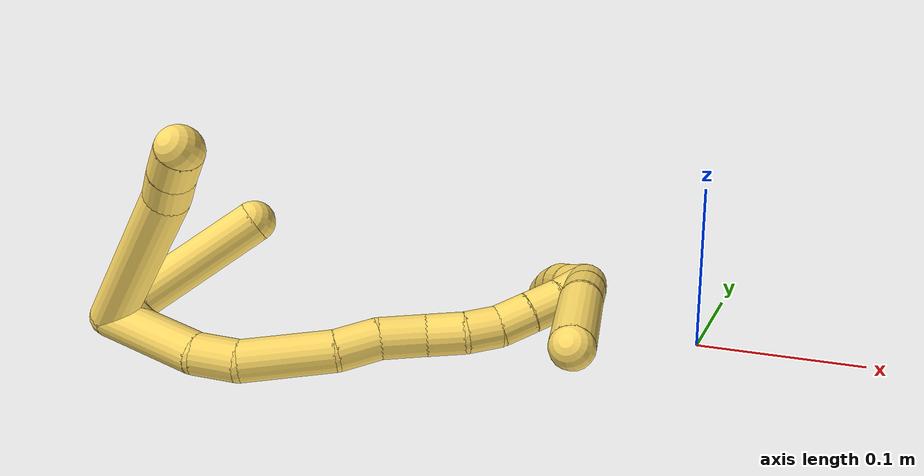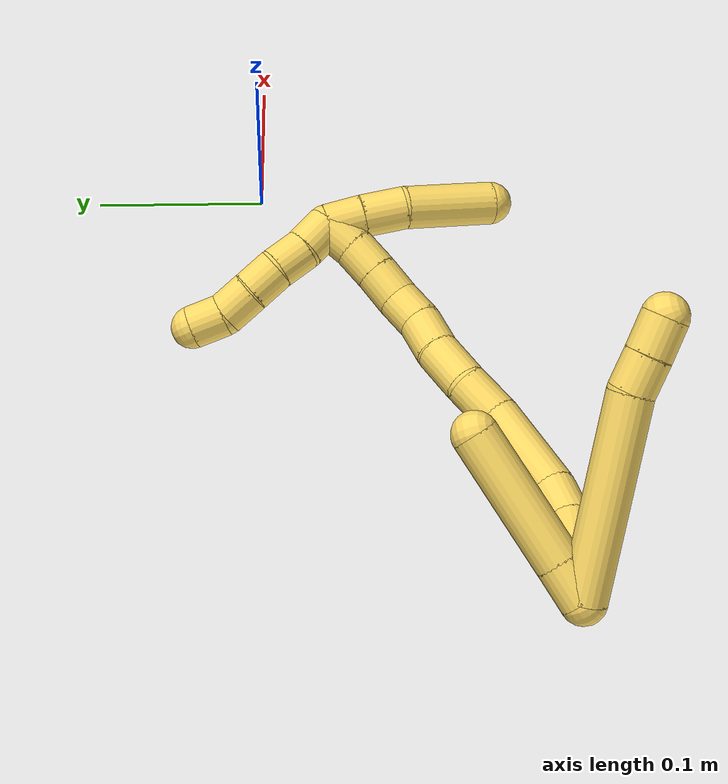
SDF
<sdf version="1.7">
 <world name="default">
  <model name="5">
   <static>0</static>
   <link name="5">
    <collision name="collision-cylinder-e_1_2_8">
     <pose>0.026728 0.035606 0.03131 -0.849497 0.513319 -0.236294</pose>
     <geometry><cylinder><radius>0.0125</radius><length>0.108858</length></cylinder></geometry>
     <surface>
      <friction><ode><mu>1.16</mu><mu2>1.16</mu2><slip1>0</slip1><slip2>0</slip2></ode></friction>
      <contact><ode><kp>1e+06</kp><kd>1</kd><max_vel>0</max_vel><min_depth>0.001</min_depth></ode></contact>
     </surface>
    </collision>
    <visual name="visual-cylinder-e_1_2_8">
     <pose>0.026728 0.035606 0.03131 -0.849497 0.513319 -0.236294</pose>
     <geometry><cylinder><radius>0.0125</radius><length>0.108858</length></cylinder></geometry>
     <material><ambient>1 0.858824 0.4 1</ambient></material>
    </visual>
    <collision name="collision-cylinder-e_2_8_9">
     <pose>0.058469 0.076222 0.069974 -0.598176 0.513023 -0.161396</pose>
     <geometry><cylinder><radius>0.0125</radius><length>0.020425</length></cylinder></geometry>
     <surface>
      <friction><ode><mu>1.16</mu><mu2>1.16</mu2><slip1>0</slip1><slip2>0</slip2></ode></friction>
      <contact><ode><kp>1e+06</kp><kd>1</kd><max_vel>0</max_vel><min_depth>0.001</min_depth></ode></contact>
     </surface>
    </collision>
    <visual name="visual-cylinder-e_2_8_9">
     <pose>0.058469 0.076222 0.069974 -0.598176 0.513023 -0.161396</pose>
     <geometry><cylinder><radius>0.0125</radius><length>0.020425</length></cylinder></geometry>
     <material><ambient>1 0.858824 0.4 1</ambient></material>
    </visual>
    <collision name="collision-cylinder-e_3_9_6">
     <pose>0.068938 0.08634 0.084498 -0.618825 0.554809 -0.181555</pose>
     <geometry><cylinder><radius>0.0125</radius><length>0.020717</length></cylinder></geometry>
     <surface>
      <friction><ode><mu>1.16</mu><mu2>1.16</mu2><slip1>0</slip1><slip2>0</slip2></ode></friction>
      <contact><ode><kp>1e+06</kp><kd>1</kd><max_vel>0</max_vel><min_depth>0.001</min_depth></ode></contact>
     </surface>
    </collision>
    <visual name="visual-cylinder-e_3_9_6">
     <pose>0.068938 0.08634 0.084498 -0.618825 0.554809 -0.181555</pose>
     <geometry><cylinder><radius>0.0125</radius><length>0.020717</length></cylinder></geometry>
     <material><ambient>1 0.858824 0.4 1</ambient></material>
    </visual>
    <collision name="collision-cylinder-e_1_2_10">
     <pose>0.00553 0.009803 -0.001969 -1.76905 0.505217 -0.610566</pose>
     <geometry><cylinder><radius>0.0125</radius><length>0.022852</length></cylinder></geometry>
     <surface>
      <friction><ode><mu>1.16</mu><mu2>1.16</mu2><slip1>0</slip1><slip2>0</slip2></ode></friction>
      <contact><ode><kp>1e+06</kp><kd>1</kd><max_vel>0</max_vel><min_depth>0.001</min_depth></ode></contact>
     </surface>
    </collision>
    <visual name="visual-cylinder-e_1_2_10">
     <pose>0.00553 0.009803 -0.001969 -1.76905 0.505217 -0.610566</pose>
     <geometry><cylinder><radius>0.0125</radius><length>0.022852</length></cylinder></geometry>
     <material><ambient>1 0.858824 0.4 1</ambient></material>
    </visual>
    <collision name="collision-cylinder-e_2_10_5">
     <pose>0.028384 0.053467 -0.010358 -1.75814 0.465773 -0.557827</pose>
     <geometry><cylinder><radius>0.0125</radius><length>0.077148</length></cylinder></geometry>
     <surface>
      <friction><ode><mu>1.16</mu><mu2>1.16</mu2><slip1>0</slip1><slip2>0</slip2></ode></friction>
      <contact><ode><kp>1e+06</kp><kd>1</kd><max_vel>0</max_vel><min_depth>0.001</min_depth></ode></contact>
     </surface>
    </collision>
    <visual name="visual-cylinder-e_2_10_5">
     <pose>0.028384 0.053467 -0.010358 -1.75814 0.465773 -0.557827</pose>
     <geometry><cylinder><radius>0.0125</radius><length>0.077148</length></cylinder></geometry>
     <material><ambient>1 0.858824 0.4 1</ambient></material>
    </visual>
    <collision name="collision-cylinder-e_1_2_11">
     <pose>0.030575 0.001471 -0.004301 -2.81202 1.42319 -2.76057</pose>
     <geometry><cylinder><radius>0.0125</radius><length>0.061823</length></cylinder></geometry>
     <surface>
      <friction><ode><mu>1.16</mu><mu2>1.16</mu2><slip1>0</slip1><slip2>0</slip2></ode></friction>
      <contact><ode><kp>1e+06</kp><kd>1</kd><max_vel>0</max_vel><min_depth>0.001</min_depth></ode></contact>
     </surface>
    </collision>
    <visual name="visual-cylinder-e_1_2_11">
     <pose>0.030575 0.001471 -0.004301 -2.81202 1.42319 -2.76057</pose>
     <geometry><cylinder><radius>0.0125</radius><length>0.061823</length></cylinder></geometry>
     <material><ambient>1 0.858824 0.4 1</ambient></material>
    </visual>
    <collision name="collision-cylinder-e_2_11_12">
     <pose>0.073063 0.006486 -0.012338 -2.38259 1.16284 -2.05069</pose>
     <geometry><cylinder><radius>0.0125</radius><length>0.025955</length></cylinder></geometry>
     <surface>
      <friction><ode><mu>1.16</mu><mu2>1.16</mu2><slip1>0</slip1><slip2>0</slip2></ode></friction>
      <contact><ode><kp>1e+06</kp><kd>1</kd><max_vel>0</max_vel><min_depth>0.001</min_depth></ode></contact>
     </surface>
    </collision>
    <visual name="visual-cylinder-e_2_11_12">
     <pose>0.073063 0.006486 -0.012338 -2.38259 1.16284 -2.05069</pose>
     <geometry><cylinder><radius>0.0125</radius><length>0.025955</length></cylinder></geometry>
     <material><ambient>1 0.858824 0.4 1</ambient></material>
    </visual>
    <collision name="collision-cylinder-e_3_12_13">
     <pose>0.105488 0.02469 -0.026602 -2.19358 0.849171 -1.44469</pose>
     <geometry><cylinder><radius>0.0125</radius><length>0.054645</length></cylinder></geometry>
     <surface>
      <friction><ode><mu>1.16</mu><mu2>1.16</mu2><slip1>0</slip1><slip2>0</slip2></ode></friction>
      <contact><ode><kp>1e+06</kp><kd>1</kd><max_vel>0</max_vel><min_depth>0.001</min_depth></ode></contact>
     </surface>
    </collision>
    <visual name="visual-cylinder-e_3_12_13">
     <pose>0.105488 0.02469 -0.026602 -2.19358 0.849171 -1.44469</pose>
     <geometry><cylinder><radius>0.0125</radius><length>0.054645</length></cylinder></geometry>
     <material><ambient>1 0.858824 0.4 1</ambient></material>
    </visual>
    <collision name="collision-cylinder-e_4_13_14">
     <pose>0.133603 0.048027 -0.042735 -2.1444 0.634566 -1.0854</pose>
     <geometry><cylinder><radius>0.0125</radius><length>0.025651</length></cylinder></geometry>
     <surface>
      <friction><ode><mu>1.16</mu><mu2>1.16</mu2><slip1>0</slip1><slip2>0</slip2></ode></friction>
      <contact><ode><kp>1e+06</kp><kd>1</kd><max_vel>0</max_vel><min_depth>0.001</min_depth></ode></contact>
     </surface>
    </collision>
    <visual name="visual-cylinder-e_4_13_14">
     <pose>0.133603 0.048027 -0.042735 -2.1444 0.634566 -1.0854</pose>
     <geometry><cylinder><radius>0.0125</radius><length>0.025651</length></cylinder></geometry>
     <material><ambient>1 0.858824 0.4 1</ambient></material>
    </visual>
    <collision name="collision-cylinder-e_5_14_15">
     <pose>0.151522 0.063771 -0.054504 -2.28795 0.832967 -1.54312</pose>
     <geometry><cylinder><radius>0.0125</radius><length>0.027883</length></cylinder></geometry>
     <surface>
      <friction><ode><mu>1.16</mu><mu2>1.16</mu2><slip1>0</slip1><slip2>0</slip2></ode></friction>
      <contact><ode><kp>1e+06</kp><kd>1</kd><max_vel>0</max_vel><min_depth>0.001</min_depth></ode></contact>
     </surface>
    </collision>
    <visual name="visual-cylinder-e_5_14_15">
     <pose>0.151522 0.063771 -0.054504 -2.28795 0.832967 -1.54312</pose>
     <geometry><cylinder><radius>0.0125</radius><length>0.027883</length></cylinder></geometry>
     <material><ambient>1 0.858824 0.4 1</ambient></material>
    </visual>
    <collision name="collision-cylinder-e_6_15_16">
     <pose>0.171159 0.076462 -0.064144 -2.12439 0.95387 -1.49487</pose>
     <geometry><cylinder><radius>0.0125</radius><length>0.022855</length></cylinder></geometry>
     <surface>
      <friction><ode><mu>1.16</mu><mu2>1.16</mu2><slip1>0</slip1><slip2>0</slip2></ode></friction>
      <contact><ode><kp>1e+06</kp><kd>1</kd><max_vel>0</max_vel><min_depth>0.001</min_depth></ode></contact>
     </surface>
    </collision>
    <visual name="visual-cylinder-e_6_15_16">
     <pose>0.171159 0.076462 -0.064144 -2.12439 0.95387 -1.49487</pose>
     <geometry><cylinder><radius>0.0125</radius><length>0.022855</length></cylinder></geometry>
     <material><ambient>1 0.858824 0.4 1</ambient></material>
    </visual>
    <collision name="collision-cylinder-e_7_16_17">
     <pose>0.187135 0.088208 -0.072067 -2.19915 0.721421 -1.27461</pose>
     <geometry><cylinder><radius>0.0125</radius><length>0.020155</length></cylinder></geometry>
     <surface>
      <friction><ode><mu>1.16</mu><mu2>1.16</mu2><slip1>0</slip1><slip2>0</slip2></ode></friction>
      <contact><ode><kp>1e+06</kp><kd>1</kd><max_vel>0</max_vel><min_depth>0.001</min_depth></ode></contact>
     </surface>
    </collision>
    <visual name="visual-cylinder-e_7_16_17">
     <pose>0.187135 0.088208 -0.072067 -2.19915 0.721421 -1.27461</pose>
     <geometry><cylinder><radius>0.0125</radius><length>0.020155</length></cylinder></geometry>
     <material><ambient>1 0.858824 0.4 1</ambient></material>
    </visual>
    <collision name="collision-cylinder-e_8_17_18">
     <pose>0.199416 0.102192 -0.079889 -1.97609 0.581592 -0.852468</pose>
     <geometry><cylinder><radius>0.0125</radius><length>0.02048</length></cylinder></geometry>
     <surface>
      <friction><ode><mu>1.16</mu><mu2>1.16</mu2><slip1>0</slip1><slip2>0</slip2></ode></friction>
      <contact><ode><kp>1e+06</kp><kd>1</kd><max_vel>0</max_vel><min_depth>0.001</min_depth></ode></contact>
     </surface>
    </collision>
    <visual name="visual-cylinder-e_8_17_18">
     <pose>0.199416 0.102192 -0.079889 -1.97609 0.581592 -0.852468</pose>
     <geometry><cylinder><radius>0.0125</radius><length>0.02048</length></cylinder></geometry>
     <material><ambient>1 0.858824 0.4 1</ambient></material>
    </visual>
    <collision name="collision-cylinder-e_9_18_19">
     <pose>0.210293 0.117816 -0.087009 -2.02053 0.54725 -0.840948</pose>
     <geometry><cylinder><radius>0.0125</radius><length>0.020183</length></cylinder></geometry>
     <surface>
      <friction><ode><mu>1.16</mu><mu2>1.16</mu2><slip1>0</slip1><slip2>0</slip2></ode></friction>
      <contact><ode><kp>1e+06</kp><kd>1</kd><max_vel>0</max_vel><min_depth>0.001</min_depth></ode></contact>
     </surface>
    </collision>
    <visual name="visual-cylinder-e_9_18_19">
     <pose>0.210293 0.117816 -0.087009 -2.02053 0.54725 -0.840948</pose>
     <geometry><cylinder><radius>0.0125</radius><length>0.020183</length></cylinder></geometry>
     <material><ambient>1 0.858824 0.4 1</ambient></material>
    </visual>
    <collision name="collision-cylinder-e_10_19_1">
     <pose>0.21941 0.133709 -0.095514 -2.10022 0.389421 -0.662432</pose>
     <geometry><cylinder><radius>0.0125</radius><length>0.02037</length></cylinder></geometry>
     <surface>
      <friction><ode><mu>1.16</mu><mu2>1.16</mu2><slip1>0</slip1><slip2>0</slip2></ode></friction>
      <contact><ode><kp>1e+06</kp><kd>1</kd><max_vel>0</max_vel><min_depth>0.001</min_depth></ode></contact>
     </surface>
    </collision>
    <visual name="visual-cylinder-e_10_19_1">
     <pose>0.21941 0.133709 -0.095514 -2.10022 0.389421 -0.662432</pose>
     <geometry><cylinder><radius>0.0125</radius><length>0.02037</length></cylinder></geometry>
     <material><ambient>1 0.858824 0.4 1</ambient></material>
    </visual>
    <collision name="collision-cylinder-e_1_1_20">
     <pose>0.216051 0.141656 -0.107183 3.11462 -0.807524 -3.07849</pose>
     <geometry><cylinder><radius>0.0125</radius><length>0.02</length></cylinder></geometry>
     <surface>
      <friction><ode><mu>1.16</mu><mu2>1.16</mu2><slip1>0</slip1><slip2>0</slip2></ode></friction>
      <contact><ode><kp>1e+06</kp><kd>1</kd><max_vel>0</max_vel><min_depth>0.001</min_depth></ode></contact>
     </surface>
    </collision>
    <visual name="visual-cylinder-e_1_1_20">
     <pose>0.216051 0.141656 -0.107183 3.11462 -0.807524 -3.07849</pose>
     <geometry><cylinder><radius>0.0125</radius><length>0.02</length></cylinder></geometry>
     <material><ambient>1 0.858824 0.4 1</ambient></material>
    </visual>
    <collision name="collision-cylinder-e_2_20_21">
     <pose>0.202686 0.14243 -0.121928 -3.01953 -0.661132 2.78915</pose>
     <geometry><cylinder><radius>0.0125</radius><length>0.02</length></cylinder></geometry>
     <surface>
      <friction><ode><mu>1.16</mu><mu2>1.16</mu2><slip1>0</slip1><slip2>0</slip2></ode></friction>
      <contact><ode><kp>1e+06</kp><kd>1</kd><max_vel>0</max_vel><min_depth>0.001</min_depth></ode></contact>
     </surface>
    </collision>
    <visual name="visual-cylinder-e_2_20_21">
     <pose>0.202686 0.14243 -0.121928 -3.01953 -0.661132 2.78915</pose>
     <geometry><cylinder><radius>0.0125</radius><length>0.02</length></cylinder></geometry>
     <material><ambient>1 0.858824 0.4 1</ambient></material>
    </visual>
    <collision name="collision-cylinder-e_3_21_22">
     <pose>0.191177 0.142813 -0.138179 3.07303 -0.566716 -2.90714</pose>
     <geometry><cylinder><radius>0.0125</radius><length>0.02</length></cylinder></geometry>
     <surface>
      <friction><ode><mu>1.16</mu><mu2>1.16</mu2><slip1>0</slip1><slip2>0</slip2></ode></friction>
      <contact><ode><kp>1e+06</kp><kd>1</kd><max_vel>0</max_vel><min_depth>0.001</min_depth></ode></contact>
     </surface>
    </collision>
    <visual name="visual-cylinder-e_3_21_22">
     <pose>0.191177 0.142813 -0.138179 3.07303 -0.566716 -2.90714</pose>
     <geometry><cylinder><radius>0.0125</radius><length>0.02</length></cylinder></geometry>
     <material><ambient>1 0.858824 0.4 1</ambient></material>
    </visual>
    <collision name="collision-cylinder-e_4_22_23">
     <pose>0.18129 0.141265 -0.155464 3.03264 -0.468842 -2.69261</pose>
     <geometry><cylinder><radius>0.0125</radius><length>0.02</length></cylinder></geometry>
     <surface>
      <friction><ode><mu>1.16</mu><mu2>1.16</mu2><slip1>0</slip1><slip2>0</slip2></ode></friction>
      <contact><ode><kp>1e+06</kp><kd>1</kd><max_vel>0</max_vel><min_depth>0.001</min_depth></ode></contact>
     </surface>
    </collision>
    <visual name="visual-cylinder-e_4_22_23">
     <pose>0.18129 0.141265 -0.155464 3.03264 -0.468842 -2.69261</pose>
     <geometry><cylinder><radius>0.0125</radius><length>0.02</length></cylinder></geometry>
     <material><ambient>1 0.858824 0.4 1</ambient></material>
    </visual>
    <collision name="collision-cylinder-e_5_23_4">
     <pose>0.174017 0.142225 -0.173749 -2.93945 -0.279019 1.89063</pose>
     <geometry><cylinder><radius>0.0125</radius><length>0.02</length></cylinder></geometry>
     <surface>
      <friction><ode><mu>1.16</mu><mu2>1.16</mu2><slip1>0</slip1><slip2>0</slip2></ode></friction>
      <contact><ode><kp>1e+06</kp><kd>1</kd><max_vel>0</max_vel><min_depth>0.001</min_depth></ode></contact>
     </surface>
    </collision>
    <visual name="visual-cylinder-e_5_23_4">
     <pose>0.174017 0.142225 -0.173749 -2.93945 -0.279019 1.89063</pose>
     <geometry><cylinder><radius>0.0125</radius><length>0.02</length></cylinder></geometry>
     <material><ambient>1 0.858824 0.4 1</ambient></material>
    </visual>
    <collision name="collision-cylinder-e_1_1_24">
     <pose>0.227184 0.137902 -0.090933 0.399246 0.367844 0.075236</pose>
     <geometry><cylinder><radius>0.0125</radius><length>0.021726</length></cylinder></geometry>
     <surface>
      <friction><ode><mu>1.16</mu><mu2>1.16</mu2><slip1>0</slip1><slip2>0</slip2></ode></friction>
      <contact><ode><kp>1e+06</kp><kd>1</kd><max_vel>0</max_vel><min_depth>0.001</min_depth></ode></contact>
     </surface>
    </collision>
    <visual name="visual-cylinder-e_1_1_24">
     <pose>0.227184 0.137902 -0.090933 0.399246 0.367844 0.075236</pose>
     <geometry><cylinder><radius>0.0125</radius><length>0.021726</length></cylinder></geometry>
     <material><ambient>1 0.858824 0.4 1</ambient></material>
    </visual>
    <collision name="collision-cylinder-e_2_24_25">
     <pose>0.23529 0.128692 -0.070863 0.456412 0.337864 0.079183</pose>
     <geometry><cylinder><radius>0.0125</radius><length>0.025343</length></cylinder></geometry>
     <surface>
      <friction><ode><mu>1.16</mu><mu2>1.16</mu2><slip1>0</slip1><slip2>0</slip2></ode></friction>
      <contact><ode><kp>1e+06</kp><kd>1</kd><max_vel>0</max_vel><min_depth>0.001</min_depth></ode></contact>
     </surface>
    </collision>
    <visual name="visual-cylinder-e_2_24_25">
     <pose>0.23529 0.128692 -0.070863 0.456412 0.337864 0.079183</pose>
     <geometry><cylinder><radius>0.0125</radius><length>0.025343</length></cylinder></geometry>
     <material><ambient>1 0.858824 0.4 1</ambient></material>
    </visual>
    <collision name="collision-cylinder-e_3_25_3">
     <pose>0.249514 0.108086 -0.041034 0.676636 0.388421 0.138188</pose>
     <geometry><cylinder><radius>0.0125</radius><length>0.052931</length></cylinder></geometry>
     <surface>
      <friction><ode><mu>1.16</mu><mu2>1.16</mu2><slip1>0</slip1><slip2>0</slip2></ode></friction>
      <contact><ode><kp>1e+06</kp><kd>1</kd><max_vel>0</max_vel><min_depth>0.001</min_depth></ode></contact>
     </surface>
    </collision>
    <visual name="visual-cylinder-e_3_25_3">
     <pose>0.249514 0.108086 -0.041034 0.676636 0.388421 0.138188</pose>
     <geometry><cylinder><radius>0.0125</radius><length>0.052931</length></cylinder></geometry>
     <material><ambient>1 0.858824 0.4 1</ambient></material>
    </visual>
    <collision name="collision-sphere-3">
     <pose>0.259537 0.092749 -0.021936 0 -0 0</pose>
     <geometry><sphere><radius>0.0125</radius></sphere></geometry>
     <surface>
      <friction><ode><mu>1.16</mu><mu2>1.16</mu2><slip1>0</slip1><slip2>0</slip2></ode></friction>
      <contact><ode><kp>1e+06</kp><kd>1</kd><max_vel>0</max_vel><min_depth>0.001</min_depth></ode></contact>
     </surface>
    </collision>
    <visual name="visual-sphere-3">
     <pose>0.259537 0.092749 -0.021936 0 -0 0</pose>
     <geometry><sphere><radius>0.0125</radius></sphere></geometry>
     <material><ambient>1 0.858824 0.4 1</ambient></material>
    </visual>
    <collision name="collision-sphere-25">
     <pose>0.239491 0.123423 -0.060131 0 -0 0</pose>
     <geometry><sphere><radius>0.0125</radius></sphere></geometry>
     <surface>
      <friction><ode><mu>1.16</mu><mu2>1.16</mu2><slip1>0</slip1><slip2>0</slip2></ode></friction>
      <contact><ode><kp>1e+06</kp><kd>1</kd><max_vel>0</max_vel><min_depth>0.001</min_depth></ode></contact>
     </surface>
    </collision>
    <visual name="visual-sphere-25">
     <pose>0.239491 0.123423 -0.060131 0 -0 0</pose>
     <geometry><sphere><radius>0.0125</radius></sphere></geometry>
     <material><ambient>1 0.858824 0.4 1</ambient></material>
    </visual>
    <collision name="collision-sphere-24">
     <pose>0.23109 0.133961 -0.081594 0 -0 0</pose>
     <geometry><sphere><radius>0.0125</radius></sphere></geometry>
     <surface>
      <friction><ode><mu>1.16</mu><mu2>1.16</mu2><slip1>0</slip1><slip2>0</slip2></ode></friction>
      <contact><ode><kp>1e+06</kp><kd>1</kd><max_vel>0</max_vel><min_depth>0.001</min_depth></ode></contact>
     </surface>
    </collision>
    <visual name="visual-sphere-24">
     <pose>0.23109 0.133961 -0.081594 0 -0 0</pose>
     <geometry><sphere><radius>0.0125</radius></sphere></geometry>
     <material><ambient>1 0.858824 0.4 1</ambient></material>
    </visual>
    <collision name="collision-sphere-4">
     <pose>0.171263 0.144155 -0.183167 0 -0 0</pose>
     <geometry><sphere><radius>0.0125</radius></sphere></geometry>
     <surface>
      <friction><ode><mu>1.16</mu><mu2>1.16</mu2><slip1>0</slip1><slip2>0</slip2></ode></friction>
      <contact><ode><kp>1e+06</kp><kd>1</kd><max_vel>0</max_vel><min_depth>0.001</min_depth></ode></contact>
     </surface>
    </collision>
    <visual name="visual-sphere-4">
     <pose>0.171263 0.144155 -0.183167 0 -0 0</pose>
     <geometry><sphere><radius>0.0125</radius></sphere></geometry>
     <material><ambient>1 0.858824 0.4 1</ambient></material>
    </visual>
    <collision name="collision-sphere-23">
     <pose>0.176771 0.140295 -0.164332 0 -0 0</pose>
     <geometry><sphere><radius>0.0125</radius></sphere></geometry>
     <surface>
      <friction><ode><mu>1.16</mu><mu2>1.16</mu2><slip1>0</slip1><slip2>0</slip2></ode></friction>
      <contact><ode><kp>1e+06</kp><kd>1</kd><max_vel>0</max_vel><min_depth>0.001</min_depth></ode></contact>
     </surface>
    </collision>
    <visual name="visual-sphere-23">
     <pose>0.176771 0.140295 -0.164332 0 -0 0</pose>
     <geometry><sphere><radius>0.0125</radius></sphere></geometry>
     <material><ambient>1 0.858824 0.4 1</ambient></material>
    </visual>
    <collision name="collision-sphere-22">
     <pose>0.185808 0.142235 -0.146596 0 -0 0</pose>
     <geometry><sphere><radius>0.0125</radius></sphere></geometry>
     <surface>
      <friction><ode><mu>1.16</mu><mu2>1.16</mu2><slip1>0</slip1><slip2>0</slip2></ode></friction>
      <contact><ode><kp>1e+06</kp><kd>1</kd><max_vel>0</max_vel><min_depth>0.001</min_depth></ode></contact>
     </surface>
    </collision>
    <visual name="visual-sphere-22">
     <pose>0.185808 0.142235 -0.146596 0 -0 0</pose>
     <geometry><sphere><radius>0.0125</radius></sphere></geometry>
     <material><ambient>1 0.858824 0.4 1</ambient></material>
    </visual>
    <collision name="collision-sphere-21">
     <pose>0.196545 0.143391 -0.129762 0 -0 0</pose>
     <geometry><sphere><radius>0.0125</radius></sphere></geometry>
     <surface>
      <friction><ode><mu>1.16</mu><mu2>1.16</mu2><slip1>0</slip1><slip2>0</slip2></ode></friction>
      <contact><ode><kp>1e+06</kp><kd>1</kd><max_vel>0</max_vel><min_depth>0.001</min_depth></ode></contact>
     </surface>
    </collision>
    <visual name="visual-sphere-21">
     <pose>0.196545 0.143391 -0.129762 0 -0 0</pose>
     <geometry><sphere><radius>0.0125</radius></sphere></geometry>
     <material><ambient>1 0.858824 0.4 1</ambient></material>
    </visual>
    <collision name="collision-sphere-20">
     <pose>0.208826 0.141469 -0.114094 0 -0 0</pose>
     <geometry><sphere><radius>0.0125</radius></sphere></geometry>
     <surface>
      <friction><ode><mu>1.16</mu><mu2>1.16</mu2><slip1>0</slip1><slip2>0</slip2></ode></friction>
      <contact><ode><kp>1e+06</kp><kd>1</kd><max_vel>0</max_vel><min_depth>0.001</min_depth></ode></contact>
     </surface>
    </collision>
    <visual name="visual-sphere-20">
     <pose>0.208826 0.141469 -0.114094 0 -0 0</pose>
     <geometry><sphere><radius>0.0125</radius></sphere></geometry>
     <material><ambient>1 0.858824 0.4 1</ambient></material>
    </visual>
    <collision name="collision-sphere-5">
     <pose>0.045708 0.087329 -0.016777 0 -0 0</pose>
     <geometry><sphere><radius>0.0125</radius></sphere></geometry>
     <surface>
      <friction><ode><mu>1.16</mu><mu2>1.16</mu2><slip1>0</slip1><slip2>0</slip2></ode></friction>
      <contact><ode><kp>1e+06</kp><kd>1</kd><max_vel>0</max_vel><min_depth>0.001</min_depth></ode></contact>
     </surface>
    </collision>
    <visual name="visual-sphere-5">
     <pose>0.045708 0.087329 -0.016777 0 -0 0</pose>
     <geometry><sphere><radius>0.0125</radius></sphere></geometry>
     <material><ambient>1 0.858824 0.4 1</ambient></material>
    </visual>
    <collision name="collision-sphere-10">
     <pose>0.01106 0.019605 -0.003939 0 -0 0</pose>
     <geometry><sphere><radius>0.0125</radius></sphere></geometry>
     <surface>
      <friction><ode><mu>1.16</mu><mu2>1.16</mu2><slip1>0</slip1><slip2>0</slip2></ode></friction>
      <contact><ode><kp>1e+06</kp><kd>1</kd><max_vel>0</max_vel><min_depth>0.001</min_depth></ode></contact>
     </surface>
    </collision>
    <visual name="visual-sphere-10">
     <pose>0.01106 0.019605 -0.003939 0 -0 0</pose>
     <geometry><sphere><radius>0.0125</radius></sphere></geometry>
     <material><ambient>1 0.858824 0.4 1</ambient></material>
    </visual>
    <collision name="collision-sphere-6">
     <pose>0.074395 0.091447 0.091671 0 -0 0</pose>
     <geometry><sphere><radius>0.0125</radius></sphere></geometry>
     <surface>
      <friction><ode><mu>1.16</mu><mu2>1.16</mu2><slip1>0</slip1><slip2>0</slip2></ode></friction>
      <contact><ode><kp>1e+06</kp><kd>1</kd><max_vel>0</max_vel><min_depth>0.001</min_depth></ode></contact>
     </surface>
    </collision>
    <visual name="visual-sphere-6">
     <pose>0.074395 0.091447 0.091671 0 -0 0</pose>
     <geometry><sphere><radius>0.0125</radius></sphere></geometry>
     <material><ambient>1 0.858824 0.4 1</ambient></material>
    </visual>
    <collision name="collision-sphere-9">
     <pose>0.063482 0.081232 0.077326 0 -0 0</pose>
     <geometry><sphere><radius>0.0125</radius></sphere></geometry>
     <surface>
      <friction><ode><mu>1.16</mu><mu2>1.16</mu2><slip1>0</slip1><slip2>0</slip2></ode></friction>
      <contact><ode><kp>1e+06</kp><kd>1</kd><max_vel>0</max_vel><min_depth>0.001</min_depth></ode></contact>
     </surface>
    </collision>
    <visual name="visual-sphere-9">
     <pose>0.063482 0.081232 0.077326 0 -0 0</pose>
     <geometry><sphere><radius>0.0125</radius></sphere></geometry>
     <material><ambient>1 0.858824 0.4 1</ambient></material>
    </visual>
    <collision name="collision-sphere-2">
     <geometry><sphere><radius>0.0125</radius></sphere></geometry>
     <surface>
      <friction><ode><mu>1.16</mu><mu2>1.16</mu2><slip1>0</slip1><slip2>0</slip2></ode></friction>
      <contact><ode><kp>1e+06</kp><kd>1</kd><max_vel>0</max_vel><min_depth>0.001</min_depth></ode></contact>
     </surface>
    </collision>
    <visual name="visual-sphere-2">
     <geometry><sphere><radius>0.0125</radius></sphere></geometry>
     <material><ambient>1 0.858824 0.4 1</ambient></material>
    </visual>
    <collision name="collision-sphere-19">
     <pose>0.215544 0.125577 -0.090755 0 -0 0</pose>
     <geometry><sphere><radius>0.0125</radius></sphere></geometry>
     <surface>
      <friction><ode><mu>1.16</mu><mu2>1.16</mu2><slip1>0</slip1><slip2>0</slip2></ode></friction>
      <contact><ode><kp>1e+06</kp><kd>1</kd><max_vel>0</max_vel><min_depth>0.001</min_depth></ode></contact>
     </surface>
    </collision>
    <visual name="visual-sphere-19">
     <pose>0.215544 0.125577 -0.090755 0 -0 0</pose>
     <geometry><sphere><radius>0.0125</radius></sphere></geometry>
     <material><ambient>1 0.858824 0.4 1</ambient></material>
    </visual>
    <collision name="collision-sphere-8">
     <pose>0.053457 0.071211 0.062621 0 -0 0</pose>
     <geometry><sphere><radius>0.0125</radius></sphere></geometry>
     <surface>
      <friction><ode><mu>1.16</mu><mu2>1.16</mu2><slip1>0</slip1><slip2>0</slip2></ode></friction>
      <contact><ode><kp>1e+06</kp><kd>1</kd><max_vel>0</max_vel><min_depth>0.001</min_depth></ode></contact>
     </surface>
    </collision>
    <visual name="visual-sphere-8">
     <pose>0.053457 0.071211 0.062621 0 -0 0</pose>
     <geometry><sphere><radius>0.0125</radius></sphere></geometry>
     <material><ambient>1 0.858824 0.4 1</ambient></material>
    </visual>
    <collision name="collision-sphere-11">
     <pose>0.06115 0.002943 -0.008603 0 -0 0</pose>
     <geometry><sphere><radius>0.0125</radius></sphere></geometry>
     <surface>
      <friction><ode><mu>1.16</mu><mu2>1.16</mu2><slip1>0</slip1><slip2>0</slip2></ode></friction>
      <contact><ode><kp>1e+06</kp><kd>1</kd><max_vel>0</max_vel><min_depth>0.001</min_depth></ode></contact>
     </surface>
    </collision>
    <visual name="visual-sphere-11">
     <pose>0.06115 0.002943 -0.008603 0 -0 0</pose>
     <geometry><sphere><radius>0.0125</radius></sphere></geometry>
     <material><ambient>1 0.858824 0.4 1</ambient></material>
    </visual>
    <collision name="collision-sphere-12">
     <pose>0.084976 0.010029 -0.016074 0 -0 0</pose>
     <geometry><sphere><radius>0.0125</radius></sphere></geometry>
     <surface>
      <friction><ode><mu>1.16</mu><mu2>1.16</mu2><slip1>0</slip1><slip2>0</slip2></ode></friction>
      <contact><ode><kp>1e+06</kp><kd>1</kd><max_vel>0</max_vel><min_depth>0.001</min_depth></ode></contact>
     </surface>
    </collision>
    <visual name="visual-sphere-12">
     <pose>0.084976 0.010029 -0.016074 0 -0 0</pose>
     <geometry><sphere><radius>0.0125</radius></sphere></geometry>
     <material><ambient>1 0.858824 0.4 1</ambient></material>
    </visual>
    <collision name="collision-sphere-13">
     <pose>0.126 0.039351 -0.03713 0 -0 0</pose>
     <geometry><sphere><radius>0.0125</radius></sphere></geometry>
     <surface>
      <friction><ode><mu>1.16</mu><mu2>1.16</mu2><slip1>0</slip1><slip2>0</slip2></ode></friction>
      <contact><ode><kp>1e+06</kp><kd>1</kd><max_vel>0</max_vel><min_depth>0.001</min_depth></ode></contact>
     </surface>
    </collision>
    <visual name="visual-sphere-13">
     <pose>0.126 0.039351 -0.03713 0 -0 0</pose>
     <geometry><sphere><radius>0.0125</radius></sphere></geometry>
     <material><ambient>1 0.858824 0.4 1</ambient></material>
    </visual>
    <collision name="collision-sphere-14">
     <pose>0.141207 0.056703 -0.04834 0 -0 0</pose>
     <geometry><sphere><radius>0.0125</radius></sphere></geometry>
     <surface>
      <friction><ode><mu>1.16</mu><mu2>1.16</mu2><slip1>0</slip1><slip2>0</slip2></ode></friction>
      <contact><ode><kp>1e+06</kp><kd>1</kd><max_vel>0</max_vel><min_depth>0.001</min_depth></ode></contact>
     </surface>
    </collision>
    <visual name="visual-sphere-14">
     <pose>0.141207 0.056703 -0.04834 0 -0 0</pose>
     <geometry><sphere><radius>0.0125</radius></sphere></geometry>
     <material><ambient>1 0.858824 0.4 1</ambient></material>
    </visual>
    <collision name="collision-sphere-15">
     <pose>0.161838 0.070839 -0.060668 0 -0 0</pose>
     <geometry><sphere><radius>0.0125</radius></sphere></geometry>
     <surface>
      <friction><ode><mu>1.16</mu><mu2>1.16</mu2><slip1>0</slip1><slip2>0</slip2></ode></friction>
      <contact><ode><kp>1e+06</kp><kd>1</kd><max_vel>0</max_vel><min_depth>0.001</min_depth></ode></contact>
     </surface>
    </collision>
    <visual name="visual-sphere-15">
     <pose>0.161838 0.070839 -0.060668 0 -0 0</pose>
     <geometry><sphere><radius>0.0125</radius></sphere></geometry>
     <material><ambient>1 0.858824 0.4 1</ambient></material>
    </visual>
    <collision name="collision-sphere-16">
     <pose>0.18048 0.082086 -0.067619 0 -0 0</pose>
     <geometry><sphere><radius>0.0125</radius></sphere></geometry>
     <surface>
      <friction><ode><mu>1.16</mu><mu2>1.16</mu2><slip1>0</slip1><slip2>0</slip2></ode></friction>
      <contact><ode><kp>1e+06</kp><kd>1</kd><max_vel>0</max_vel><min_depth>0.001</min_depth></ode></contact>
     </surface>
    </collision>
    <visual name="visual-sphere-16">
     <pose>0.18048 0.082086 -0.067619 0 -0 0</pose>
     <geometry><sphere><radius>0.0125</radius></sphere></geometry>
     <material><ambient>1 0.858824 0.4 1</ambient></material>
    </visual>
    <collision name="collision-sphere-17">
     <pose>0.193791 0.094329 -0.076515 0 -0 0</pose>
     <geometry><sphere><radius>0.0125</radius></sphere></geometry>
     <surface>
      <friction><ode><mu>1.16</mu><mu2>1.16</mu2><slip1>0</slip1><slip2>0</slip2></ode></friction>
      <contact><ode><kp>1e+06</kp><kd>1</kd><max_vel>0</max_vel><min_depth>0.001</min_depth></ode></contact>
     </surface>
    </collision>
    <visual name="visual-sphere-17">
     <pose>0.193791 0.094329 -0.076515 0 -0 0</pose>
     <geometry><sphere><radius>0.0125</radius></sphere></geometry>
     <material><ambient>1 0.858824 0.4 1</ambient></material>
    </visual>
    <collision name="collision-sphere-18">
     <pose>0.205042 0.110055 -0.083263 0 -0 0</pose>
     <geometry><sphere><radius>0.0125</radius></sphere></geometry>
     <surface>
      <friction><ode><mu>1.16</mu><mu2>1.16</mu2><slip1>0</slip1><slip2>0</slip2></ode></friction>
      <contact><ode><kp>1e+06</kp><kd>1</kd><max_vel>0</max_vel><min_depth>0.001</min_depth></ode></contact>
     </surface>
    </collision>
    <visual name="visual-sphere-18">
     <pose>0.205042 0.110055 -0.083263 0 -0 0</pose>
     <geometry><sphere><radius>0.0125</radius></sphere></geometry>
     <material><ambient>1 0.858824 0.4 1</ambient></material>
    </visual>
    <collision name="collision-sphere-1">
     <pose>0.223277 0.141842 -0.100273 0 -0 0</pose>
     <geometry><sphere><radius>0.0125</radius></sphere></geometry>
     <surface>
      <friction><ode><mu>1.16</mu><mu2>1.16</mu2><slip1>0</slip1><slip2>0</slip2></ode></friction>
      <contact><ode><kp>1e+06</kp><kd>1</kd><max_vel>0</max_vel><min_depth>0.001</min_depth></ode></contact>
     </surface>
    </collision>
    <visual name="visual-sphere-1">
     <pose>0.223277 0.141842 -0.100273 0 -0 0</pose>
     <geometry><sphere><radius>0.0125</radius></sphere></geometry>
     <material><ambient>1 0.858824 0.4 1</ambient></material>
    </visual>
    <inertial>
     <pose>0.11859 0.070793 -0.036055 0 -0 0</pose>
     <mass>0.75</mass>
     <inertia>
      <ixx>0.000108</ixx>
      <ixy>0</ixy>
      <ixz>0</ixz>
      <iyy>0.000105</iyy>
      <iyz>0</iyz>
      <izz>-0.000247</izz>
     </inertia>
    </inertial>
   </link>
   <pose>-0.314504 -0.166771 0.029939 0.981134 0.211768 -0.146089</pose>
  </model>
 </world>
</sdf>
